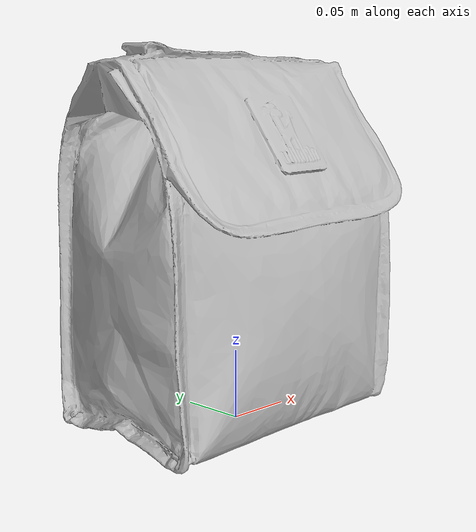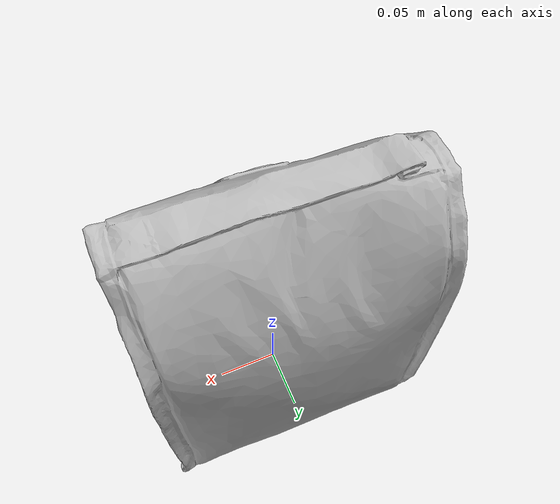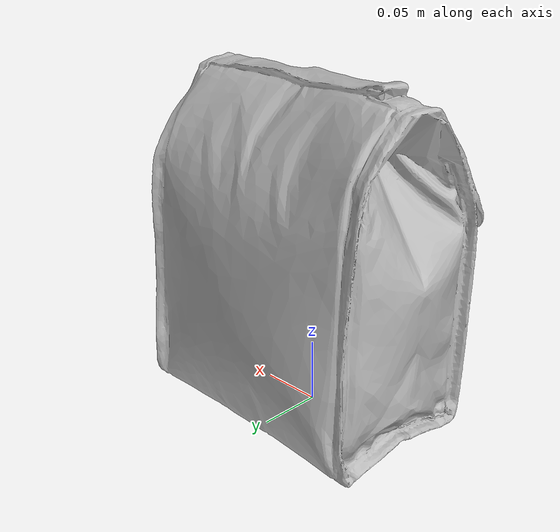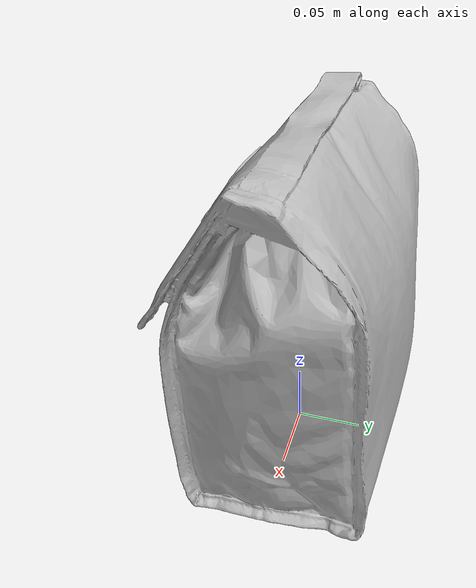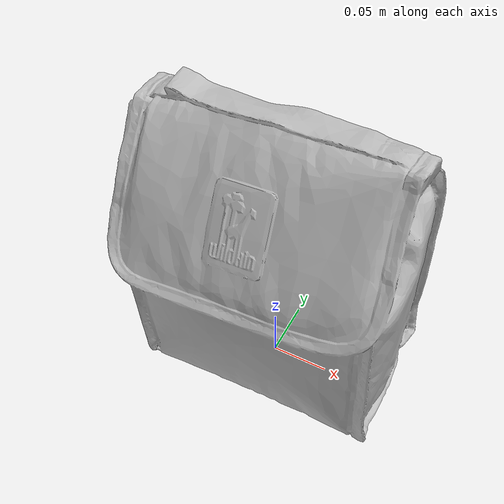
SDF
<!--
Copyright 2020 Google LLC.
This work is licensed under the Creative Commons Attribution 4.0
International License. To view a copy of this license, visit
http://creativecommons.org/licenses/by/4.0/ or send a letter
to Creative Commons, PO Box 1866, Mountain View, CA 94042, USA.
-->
<?xml version="1.0" ?>
<sdf version="1.6">
  <model name="Olive_Kids_Butterfly_Garden_Munch_n_Lunch_Bag">
    <link name="link_0">
      <visual name="visual">
        <geometry>
          <mesh>
            <uri>meshes/model.obj</uri>
          </mesh>
        </geometry>
      </visual>
      <collision name="collision_0">
        <geometry>
          <mesh>
            <uri>meshes/model.obj</uri>
          </mesh>
        </geometry>
      </collision>
    </link>
  </model>
</sdf>
